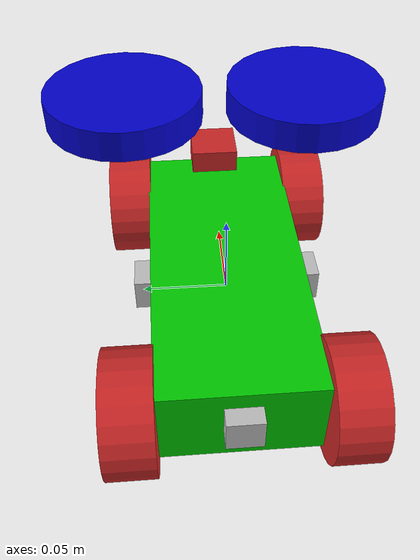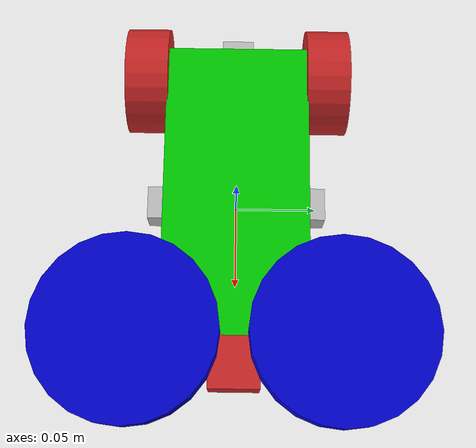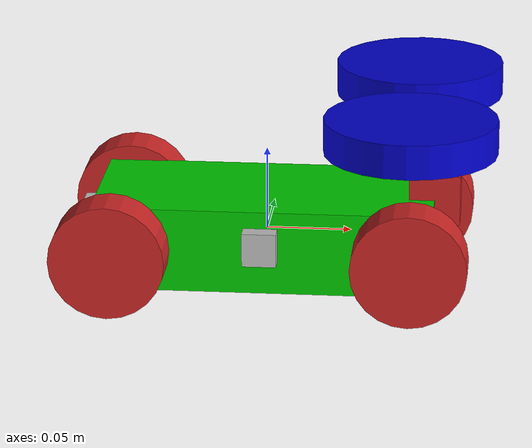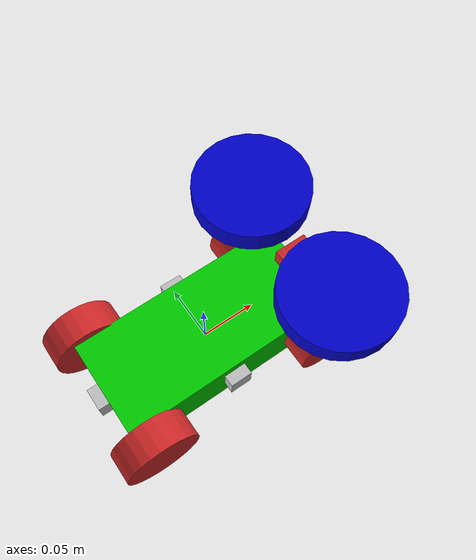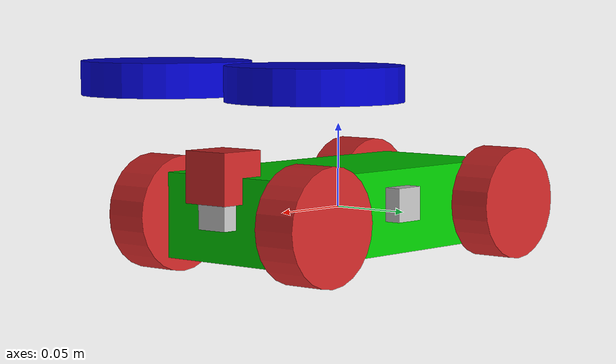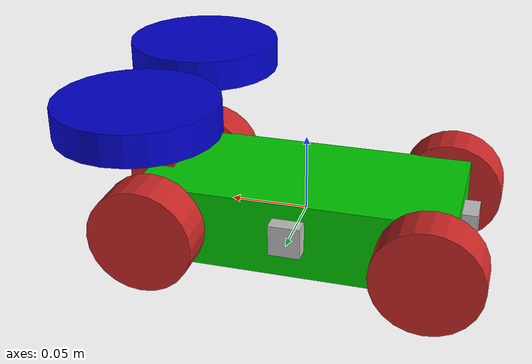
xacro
<?xml version="1.0"?>
<robot name="steer_bot" xmlns:xacro="http://www.ros.org/wiki/xacro">
  <!-- Include xacro for wheels. wheel.xacro includes materials.xacro and inertials.xacro -->
  <xacro:include filename="wheel.xacro"/>

  <xacro:arg name="use_ros2_control" default="true"/>
  <xacro:property name="robot_namespace" value="/steer_bot"/>

  <!-- Math constants -->
  <xacro:property name="deg_to_rad" value="0.01745329251994329577"/>

  <!-- Robot base dimensions -->
  <xacro:property name="base_length" value="0.2" />
  <xacro:property name="base_width" value="0.09" />
  <xacro:property name="base_height" value="0.05" />
  <xacro:property name="base_mass" value="2.5" />

  <!-- Wheel link dimensions -->
  <xacro:property name="wheel_radius" value="0.034" />
  <xacro:property name="wheel_thickness" value="0.027" />
  <xacro:property name="wheel_mass" value="0.5" />

  <!-- Steering link dimensions -->
  <xacro:property name="steer_radius" value="0.05" />
  <xacro:property name="steer_thickness" value="0.02" />
  <xacro:property name="steer_mass" value="1" />

  <!-- Axle positions -->
  <xacro:property name="axle_offset" value="0.0125" />
  <xacro:property name="steer_offset" value="0.045" />

  <!-- Sensor dimensions -->
  <xacro:property name="ultrasonic_length" value="0.02" />
  <xacro:property name="ultrasonic_width" value="0.02" />
  <xacro:property name="ultrasonic_height" value="0.02" />
  <xacro:property name="ultrasonic_mass" value="0.05" />
  <xacro:property name="camera_size" value="0.03" />
  <xacro:property name="camera_mass" value="0.1" />

  <!-- SENSOR MACRO DEFINITION (No new file needed) -->
  <xacro:macro name="ultrasonic_sensor" params="prefix parent xyz rpy">
    <link name="ultrasonic_${prefix}_link">
      <visual>
        <origin xyz="0 0 0" rpy="0 0 0"/>
        <geometry>
          <box size="${ultrasonic_length} ${ultrasonic_width} ${ultrasonic_height}"/>
        </geometry>
        <material name="gray"/>
      </visual>
      <collision>
        <origin xyz="0 0 0" rpy="0 0 0"/>
        <geometry>
          <box size="${ultrasonic_length} ${ultrasonic_width} ${ultrasonic_height}"/>
        </geometry>
      </collision>
      <xacro:solid_cuboid_inertial
          rpy="0 0 0" xyz="0 0 0"
          mass="${ultrasonic_mass}"
          x="${ultrasonic_length}" y="${ultrasonic_width}" z="${ultrasonic_height}" />
    </link>
    <joint name="ultrasonic_${prefix}_joint" type="fixed">
      <parent link="${parent}"/>
      <child link="ultrasonic_${prefix}_link"/>
      <origin xyz="${xyz}" rpy="${rpy}"/>
    </joint>
  </xacro:macro>

  <!-- Base link -->
  <link name="base_link">
    <visual>
      <origin xyz="0 0 0" rpy="0 0 0"/>
      <geometry>
        <box size="${base_length} ${base_width} ${base_height}"/>
      </geometry>
      <material name="green" />
    </visual>
    <collision>
      <origin xyz="0 0 0" rpy="0 0 0"/>
      <geometry>
        <box size="${base_length} ${base_width} ${base_height}"/>
      </geometry>
    </collision>
    <xacro:solid_cuboid_inertial
        rpy="0 0 0" xyz="0 0 0"
        mass="${base_mass}"
        x="${base_length}" y="${base_width}" z="${base_height}" />
  </link>

  <!-- Steerable front wheels -->
  <xacro:front_wheel_lr
    name="front_right" parent="base" reflect="-1"
    wheel_radius="${wheel_radius}" wheel_thickness="${wheel_thickness}" wheel_mass="${wheel_mass}"
    steer_radius="${steer_radius}" steer_thickness="${steer_thickness}" steer_mass="${steer_mass}"
    base_length="${base_length}" base_width="${base_width}" axle_offset="${axle_offset}"
    steer_height="${wheel_radius+steer_offset}" />
  <xacro:front_wheel_lr
    name="front_left" parent="base" reflect="1"
    wheel_radius="${wheel_radius}" wheel_thickness="${wheel_thickness}" wheel_mass="${wheel_mass}"
    steer_radius="${steer_radius}" steer_thickness="${steer_thickness}" steer_mass="${steer_mass}"
    base_length="${base_length}" base_width="${base_width}" axle_offset="${axle_offset}"
    steer_height="${wheel_radius+steer_offset}" />

  <!-- Rear wheels -->
  <xacro:rear_wheel_lr
    name="rear_right" parent="base"
    wheel_radius="${wheel_radius}" wheel_thickness="${wheel_thickness}" wheel_mass="${wheel_mass}">
    <origin xyz="${-base_length/2+axle_offset} ${-base_width/2-axle_offset} 0" rpy="${-90 * deg_to_rad} 0 0"/>
  </xacro:rear_wheel_lr>
  <xacro:rear_wheel_lr
    name="rear_left" parent="base"
    wheel_radius="${wheel_radius}" wheel_thickness="${wheel_thickness}" wheel_mass="${wheel_mass}">
    <origin xyz="${-base_length/2+axle_offset} ${+base_width/2+axle_offset} 0" rpy="${-90 * deg_to_rad} 0 0"/>
  </xacro:rear_wheel_lr>

  <!-- Camera Link -->
  <link name="camera_link">
    <visual>
      <origin xyz="0 0 0" rpy="0 0 0" />
      <geometry>
        <box size="${camera_size} ${camera_size} ${camera_size}" />
      </geometry>
      <material name="red" />
    </visual>
    <collision>
      <origin xyz="0 0 0" rpy="0 0 0" />
      <geometry>
        <box size="${camera_size} ${camera_size} ${camera_size}" />
      </geometry>
    </collision>
    <xacro:solid_cuboid_inertial
        rpy="0 0 0" xyz="0 0 0"
        mass="${camera_mass}"
        x="${camera_size}" y="${camera_size}" z="${camera_size}" />
  </link>

  <joint name="camera_joint" type="fixed">
    <parent link="base_link"/>
    <child link="camera_link"/>
    <origin xyz="${base_length/2} 0 ${base_height/2}" rpy="0 0 0"/>
  </joint>

  <!-- Ultrasonic Sensor Links -->
  <xacro:ultrasonic_sensor prefix="front" parent="base_link" xyz="${base_length/2} 0 ${base_height/2-ultrasonic_height}" rpy="0 ${90*deg_to_rad} 0" />
  <xacro:ultrasonic_sensor prefix="rear" parent="base_link" xyz="${-base_length/2} 0 ${base_height/2-ultrasonic_height}" rpy="0 ${-90*deg_to_rad} 0" />
  <xacro:ultrasonic_sensor prefix="right" parent="base_link" xyz="0 ${-base_width/2} ${base_height/2-ultrasonic_height}" rpy="0 0 ${-90*deg_to_rad}" />
  <xacro:ultrasonic_sensor prefix="left" parent="base_link" xyz="0 ${base_width/2} ${base_height/2-ultrasonic_height}" rpy="0 0 ${90*deg_to_rad}" />

  <!-- Gazebo Plugin for ros2_control -->
  <gazebo>
    <plugin filename="libgazebo_ros2_control.so" name="gazebo_ros2_control">
      <parameters>$(find my_robot_gazebo)/config/robot_controllers.yaml</parameters>
    </plugin>
  </gazebo>

  <!-- ros2_control hardware interface -->
  <ros2_control name="GazeboSystem" type="system">
    <hardware>
      <plugin>gazebo_ros2_control/GazeboSystem</plugin>
    </hardware>
    <joint name="front_left_steer_joint">
      <command_interface name="position"/>
      <state_interface name="position" />
      <state_interface name="velocity" />
    </joint>
    <joint name="front_right_steer_joint">
      <command_interface name="position"/>
      <state_interface name="position" />
      <state_interface name="velocity" />
    </joint>
    <joint name="rear_left_wheel_joint">
      <command_interface name="velocity"/>
      <state_interface name="position" />
      <state_interface name="velocity" />
    </joint>
    <joint name="rear_right_wheel_joint">
      <command_interface name="velocity"/>
      <state_interface name="position" />
      <state_interface name="velocity" />
    </joint>
  </ros2_control>

</robot>

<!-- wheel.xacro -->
<robot name="wheel" xmlns:xacro="http://wiki.ros.org/xacro">
  <!-- Include xacro for materials and inertials -->
  <xacro:include filename="materials.xacro"/>
  <xacro:include filename="inertials.xacro"/>

  <!-- Properties -->
  <xacro:property name="steer_effort" value="10.0"/>
  <xacro:property name="steer_velocity" value="5.0"/>
  <xacro:property name="steer_limit_deg" value="45.0"/>

  <!-- Bicycle model front steering link (required for steer_drive_controller) -->
  <xacro:macro name="front_steer"
    params="
      name
      parent
      steer_radius
      steer_thickness
      steer_mass
      base_length
      base_width
      axle_offset
      steer_height">
    <link name="${name}_steer_link">
      <visual>
        <origin xyz="0 0 0" rpy="0 0 0"/>
        <geometry>
          <cylinder radius="${steer_radius}" length="${steer_thickness}"/>
        </geometry>
        <material name="yellow" />
      </visual>
      <xacro:solid_cylinder_inertial
          rpy="0 0 0" xyz="0 0 0"
          mass="${steer_mass}"
          radius="${steer_radius}" length="${steer_thickness}" />
    </link>

    <joint name="${name}_steer_joint" type="revolute">
      <parent link="${parent}_link"/>
      <child link="${name}_steer_link"/>
      <origin xyz="${base_length/2-axle_offset} 0 ${steer_height}" rpy="0 0 0"/>
      <axis xyz="0 0 1"/>
      <limit effort="${steer_effort}"
             lower="${-180.0 * deg_to_rad}" upper="${180.0 * deg_to_rad}"
             velocity="${steer_velocity}"/>
    </joint>

    <transmission name="${name}_steer_joint_trans">
      <type>transmission_interface/SimpleTransmission</type>
      <actuator name="${name}_steer_joint_motor">
        <mechanicalReduction>1</mechanicalReduction>
        <hardwareInterface>hardware_interface/PositionJointInterface</hardwareInterface>
      </actuator>
      <joint name="${name}_steer_joint">
        <hardwareInterface>hardware_interface/PositionJointInterface</hardwareInterface>
      </joint>
    </transmission>

    <gazebo reference="${name}_steer_link">
      <material>Gazebo/Yellow</material>
    </gazebo>
  </xacro:macro>

  <!-- Bicycle model rear wheel link (required for steer_drive_controller) -->
  <xacro:macro name="rear_wheel"
    params="
      name
      parent
      wheel_radius
      wheel_thickness
      wheel_mass
      *origin">
    <link name="${name}_wheel_link">
      <visual>
        <origin xyz="0 0 0" rpy="0 0 0"/>
        <geometry>
          <cylinder radius="${wheel_radius}" length="${wheel_thickness}"/>
        </geometry>
        <material name="yellow" />
      </visual>
      <xacro:solid_cylinder_inertial
          rpy="0 0 0" xyz="0 0 0"
          mass="${wheel_mass}"
          radius="${wheel_radius}" length="${wheel_thickness}" />
    </link>

    <joint name="${name}_wheel_joint" type="continuous">
      <parent link="${parent}_link"/>
      <child link="${name}_wheel_link"/>
      <xacro:insert_block name="origin"/>
      <axis xyz="0 0 1"/>
    </joint>

    <transmission name="${name}_wheel_joint_trans">
      <type>transmission_interface/SimpleTransmission</type>
      <actuator name="${name}_wheel_joint_motor">
        <mechanicalReduction>1</mechanicalReduction>
        <hardwareInterface>hardware_interface/VelocityJointInterface</hardwareInterface>
      </actuator>
      <joint name="${name}_wheel_joint">
        <hardwareInterface>hardware_interface/VelocityJointInterface</hardwareInterface>
      </joint>
    </transmission>

    <gazebo reference="${name}_wheel_link">
      <material>Gazebo/Yellow</material>
    </gazebo>
  </xacro:macro>

  <!-- Car steering model front (steerable) wheel links (left/right) -->
  <xacro:macro name="front_wheel_lr"
    params="
      name
      parent
      reflect
      wheel_radius
      wheel_thickness
      wheel_mass
      steer_radius
      steer_thickness
      steer_mass
      base_length
      base_width
      axle_offset
      steer_height">
    <link name="${name}_steer_link">
      <visual>
        <origin xyz="0 0 0" rpy="0 0 0"/>
        <geometry>
          <cylinder radius="${steer_radius}" length="${steer_thickness}"/>
        </geometry>
        <material name="blue" />
      </visual>
      <xacro:solid_cylinder_inertial
          rpy="0 0 0" xyz="0 0 0"
          mass="${steer_mass}"
          radius="${steer_radius}" length="${steer_thickness}" />
    </link>

    <joint name="${name}_steer_joint" type="revolute">
      <parent link="${parent}_link"/>
      <child link="${name}_steer_link"/>
      <origin xyz="${base_length/2-axle_offset} ${reflect*(base_width/2+axle_offset)} ${steer_height}" rpy="0 0 0"/>
      <axis xyz="0 0 1"/>
      <limit effort="${steer_effort}"
             lower="${steer_limit_deg * deg_to_rad * -1.0}" upper="${steer_limit_deg * deg_to_rad}"
             velocity="${steer_velocity}"/>
    </joint>

    <link name="${name}_wheel_link">
      <visual>
        <origin xyz="0 0 0" rpy="0 0 0"/>
        <geometry>
          <cylinder radius="${wheel_radius}" length="${wheel_thickness}"/>
        </geometry>
        <material name="red" />
      </visual>
      <collision>
        <origin xyz="0 0 0" rpy="0 0 0"/>
        <geometry>
          <cylinder radius="${wheel_radius}" length="${wheel_thickness}"/>
        </geometry>
      </collision>
      <xacro:solid_cylinder_inertial
          rpy="0 0 0" xyz="0 0 0"
          mass="${wheel_mass}"
          radius="${wheel_radius}" length="${wheel_thickness}" />
    </link>

    <joint name="${name}_wheel_joint" type="continuous">
      <parent link="${name}_steer_link"/>
      <child link="${name}_wheel_link"/>
      <origin xyz="0 0 ${-steer_height}" rpy="${-90 * deg_to_rad} 0 0"/>
      <axis xyz="0 0 1"/>
    </joint>

    <transmission name="${name}_steer_joint_trans">
      <type>transmission_interface/SimpleTransmission</type>
      <actuator name="${name}_steer_joint_motor">
        <mechanicalReduction>1</mechanicalReduction>
        <hardwareInterface>hardware_interface/PositionJointInterface</hardwareInterface>
      </actuator>
      <joint name="${name}_steer_joint">
        <hardwareInterface>hardware_interface/PositionJointInterface</hardwareInterface>
      </joint>
    </transmission>

    <transmission name="${name}_wheel_joint_trans">
      <type>transmission_interface/SimpleTransmission</type>
      <actuator name="${name}_wheel_joint_motor">
        <mechanicalReduction>1</mechanicalReduction>
        <hardwareInterface>hardware_interface/VelocityJointInterface</hardwareInterface>
      </actuator>
      <joint name="${name}_wheel_joint">
        <hardwareInterface>hardware_interface/VelocityJointInterface</hardwareInterface>
      </joint>
    </transmission>

    <gazebo reference="${name}_steer_link">
      <material>Gazebo/Blue</material>
    </gazebo>

    <gazebo reference="${name}_wheel_link">
      <material>Gazebo/Red</material>
    </gazebo>
  </xacro:macro>

  <!-- Car steering model rear wheel links (left/right) -->
  <xacro:macro name="rear_wheel_lr"
    params="
      name
      parent
      wheel_radius
      wheel_thickness
      wheel_mass
      *origin">
    <link name="${name}_wheel_link">
      <visual>
        <origin xyz="0 0 0" rpy="0 0 0"/>
        <geometry>
          <cylinder radius="${wheel_radius}" length="${wheel_thickness}"/>
        </geometry>
        <material name="red" />
      </visual>
      <collision>
        <origin xyz="0 0 0" rpy="0 0 0"/>
        <geometry>
          <cylinder radius="${wheel_radius}" length="${wheel_thickness}"/>
        </geometry>
      </collision>
      <xacro:solid_cylinder_inertial
          rpy="0 0 0" xyz="0 0 0"
          mass="${wheel_mass}"
          radius="${wheel_radius}" length="${wheel_thickness}" />
    </link>

    <joint name="${name}_wheel_joint" type="continuous">
      <parent link="${parent}_link"/>
      <child link="${name}_wheel_link"/>
      <xacro:insert_block name="origin"/>
      <axis xyz="0 0 1"/>
    </joint>

    <transmission name="${name}_wheel_joint_trans">
      <type>transmission_interface/SimpleTransmission</type>
      <actuator name="${name}_wheel_joint_motor">
        <mechanicalReduction>1</mechanicalReduction>
        <hardwareInterface>hardware_interface/VelocityJointInterface</hardwareInterface>
      </actuator>
      <joint name="${name}_wheel_joint">
        <hardwareInterface>hardware_interface/VelocityJointInterface</hardwareInterface>
      </joint>
    </transmission>

    <gazebo reference="${name}_wheel_link">
      <material>Gazebo/Red</material>
    </gazebo>
  </xacro:macro>
</robot>

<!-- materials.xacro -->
<robot xmlns:xacro="http://www.ros.org/wiki/xacro">

  <!-- Colour Definitions -->
  <material name="black">
    <color rgba="0.0 0.0 0.0 1.0"/>
  </material>

  <material name="blue">
    <color rgba="0.0 0.0 0.8 1.0"/>
  </material>

  <material name="green">
    <color rgba="0.0 0.8 0.0 1.0"/>
  </material>

  <material name="gray">
    <color rgba="0.753 0.753 0.753 1.0"/>
  </material>

  <material name="orange">
    <color rgba="1.0 0.423529411765 0.0392156862745 1.0"/>
  </material>

  <material name="brown">
    <color rgba="0.870588235294 0.811764705882 0.764705882353 1.0"/>
  </material>

  <material name="white">
    <color rgba="1.0 1.0 1.0 1.0"/>
  </material>

</robot>
